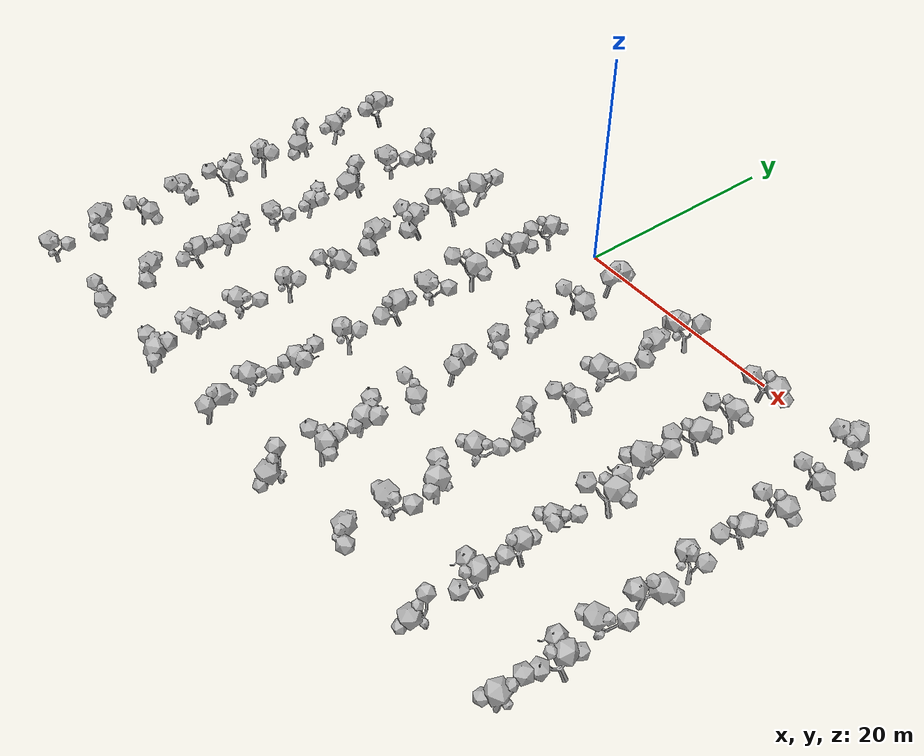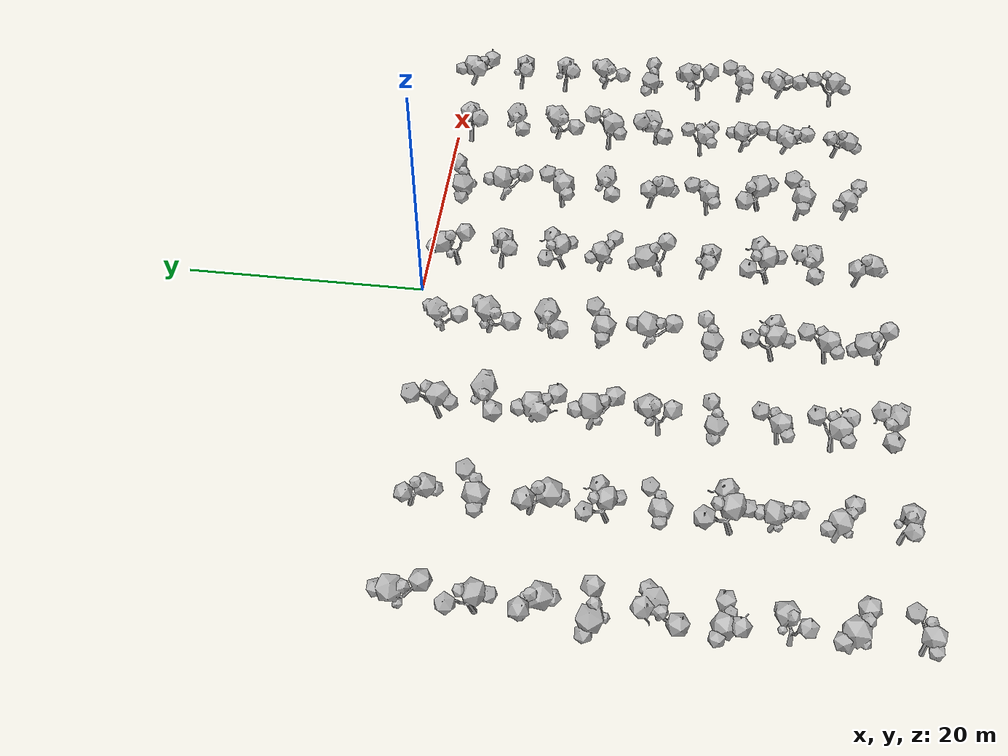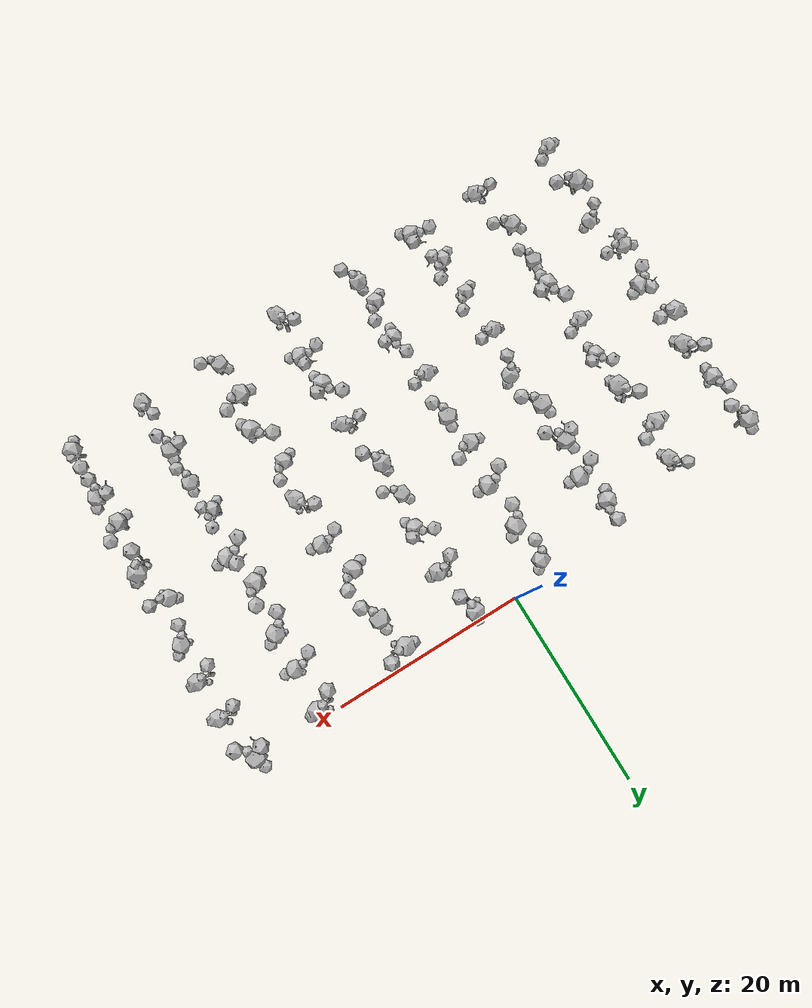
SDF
<sdf version="1.4">
 <world name="procedural_orchard">
  <model name="tree_73">
   <static>true</static>
   <pose>-29.186 -3.36981 0 0 0 5.69963</pose>
   <link name="link">
    <visual name="visual">
     <geometry>
      <mesh><uri>model://orchard/orchard_tree_4.dae</uri><scale>2.61863 2.61863 2.61863</scale></mesh>
     </geometry>
    </visual>
    <collision name="trunk_collision">
     <pose>0 0 1 0 0 0</pose>
     <geometry><cylinder><radius>0.25</radius><length>2</length></cylinder></geometry>
    </collision>
   </link>
  </model>
  <model name="tree_74">
   <static>true</static>
   <pose>-20.8308 -3.02183 0 0 0 3.83931</pose>
   <link name="link">
    <visual name="visual">
     <geometry>
      <mesh><uri>model://orchard/orchard_tree_3.dae</uri><scale>2.30781 2.30781 2.30781</scale></mesh>
     </geometry>
    </visual>
    <collision name="trunk_collision">
     <pose>0 0 1 0 0 0</pose>
     <geometry><cylinder><radius>0.25</radius><length>2</length></cylinder></geometry>
    </collision>
   </link>
  </model>
  <model name="tree_75">
   <static>true</static>
   <pose>-12.4755 -2.67385 0 0 0 3.73457</pose>
   <link name="link">
    <visual name="visual">
     <geometry>
      <mesh><uri>model://orchard/orchard_tree_1.dae</uri><scale>2.63728 2.63728 2.63728</scale></mesh>
     </geometry>
    </visual>
    <collision name="trunk_collision">
     <pose>0 0 1 0 0 0</pose>
     <geometry><cylinder><radius>0.25</radius><length>2</length></cylinder></geometry>
    </collision>
   </link>
  </model>
  <model name="tree_76">
   <static>true</static>
   <pose>-4.12022 -2.32587 0 0 0 5.08018</pose>
   <link name="link">
    <visual name="visual">
     <geometry>
      <mesh><uri>model://orchard/orchard_tree_4.dae</uri><scale>2.4354 2.4354 2.4354</scale></mesh>
     </geometry>
    </visual>
    <collision name="trunk_collision">
     <pose>0 0 1 0 0 0</pose>
     <geometry><cylinder><radius>0.25</radius><length>2</length></cylinder></geometry>
    </collision>
   </link>
  </model>
  <model name="tree_77">
   <static>true</static>
   <pose>4.23505 -1.97789 0 0 0 0.270911</pose>
   <link name="link">
    <visual name="visual">
     <geometry>
      <mesh><uri>model://orchard/orchard_tree_3.dae</uri><scale>2.61582 2.61582 2.61582</scale></mesh>
     </geometry>
    </visual>
    <collision name="trunk_collision">
     <pose>0 0 1 0 0 0</pose>
     <geometry><cylinder><radius>0.25</radius><length>2</length></cylinder></geometry>
    </collision>
   </link>
  </model>
  <model name="tree_78">
   <static>true</static>
   <pose>12.5903 -1.62991 0 0 0 1.86955</pose>
   <link name="link">
    <visual name="visual">
     <geometry>
      <mesh><uri>model://orchard/orchard_tree_3.dae</uri><scale>2.68118 2.68118 2.68118</scale></mesh>
     </geometry>
    </visual>
    <collision name="trunk_collision">
     <pose>0 0 1 0 0 0</pose>
     <geometry><cylinder><radius>0.25</radius><length>2</length></cylinder></geometry>
    </collision>
   </link>
  </model>
  <model name="tree_79">
   <static>true</static>
   <pose>20.9456 -1.28193 0 0 0 5.24981</pose>
   <link name="link">
    <visual name="visual">
     <geometry>
      <mesh><uri>model://orchard/orchard_tree_3.dae</uri><scale>2.68054 2.68054 2.68054</scale></mesh>
     </geometry>
    </visual>
    <collision name="trunk_collision">
     <pose>0 0 1 0 0 0</pose>
     <geometry><cylinder><radius>0.25</radius><length>2</length></cylinder></geometry>
    </collision>
   </link>
  </model>
  <model name="tree_80">
   <static>true</static>
   <pose>29.3009 -0.933953 0 0 0 0.298929</pose>
   <link name="link">
    <visual name="visual">
     <geometry>
      <mesh><uri>model://orchard/orchard_tree_5.dae</uri><scale>2.7302 2.7302 2.7302</scale></mesh>
     </geometry>
    </visual>
    <collision name="trunk_collision">
     <pose>0 0 1 0 0 0</pose>
     <geometry><cylinder><radius>0.25</radius><length>2</length></cylinder></geometry>
    </collision>
   </link>
  </model>
  <model name="tree_81">
   <static>true</static>
   <pose>-29.0568 -7.73036 0 0 0 4.25338</pose>
   <link name="link">
    <visual name="visual">
     <geometry>
      <mesh><uri>model://orchard/orchard_tree_1.dae</uri><scale>2.47184 2.47184 2.47184</scale></mesh>
     </geometry>
    </visual>
    <collision name="trunk_collision">
     <pose>0 0 1 0 0 0</pose>
     <geometry><cylinder><radius>0.25</radius><length>2</length></cylinder></geometry>
    </collision>
   </link>
  </model>
  <model name="tree_82">
   <static>true</static>
   <pose>-20.7057 -7.36617 0 0 0 1.13083</pose>
   <link name="link">
    <visual name="visual">
     <geometry>
      <mesh><uri>model://orchard/orchard_tree_4.dae</uri><scale>2.57348 2.57348 2.57348</scale></mesh>
     </geometry>
    </visual>
    <collision name="trunk_collision">
     <pose>0 0 1 0 0 0</pose>
     <geometry><cylinder><radius>0.25</radius><length>2</length></cylinder></geometry>
    </collision>
   </link>
  </model>
  <model name="tree_83">
   <static>true</static>
   <pose>-12.3545 -7.00198 0 0 0 5.7632</pose>
   <link name="link">
    <visual name="visual">
     <geometry>
      <mesh><uri>model://orchard/orchard_tree_1.dae</uri><scale>2.6999 2.6999 2.6999</scale></mesh>
     </geometry>
    </visual>
    <collision name="trunk_collision">
     <pose>0 0 1 0 0 0</pose>
     <geometry><cylinder><radius>0.25</radius><length>2</length></cylinder></geometry>
    </collision>
   </link>
  </model>
  <model name="tree_84">
   <static>true</static>
   <pose>-4.00334 -6.63778 0 0 0 0.206527</pose>
   <link name="link">
    <visual name="visual">
     <geometry>
      <mesh><uri>model://orchard/orchard_tree_1.dae</uri><scale>2.69623 2.69623 2.69623</scale></mesh>
     </geometry>
    </visual>
    <collision name="trunk_collision">
     <pose>0 0 1 0 0 0</pose>
     <geometry><cylinder><radius>0.25</radius><length>2</length></cylinder></geometry>
    </collision>
   </link>
  </model>
  <model name="tree_85">
   <static>true</static>
   <pose>4.34782 -6.27359 0 0 0 5.07325</pose>
   <link name="link">
    <visual name="visual">
     <geometry>
      <mesh><uri>model://orchard/orchard_tree_3.dae</uri><scale>2.51802 2.51802 2.51802</scale></mesh>
     </geometry>
    </visual>
    <collision name="trunk_collision">
     <pose>0 0 1 0 0 0</pose>
     <geometry><cylinder><radius>0.25</radius><length>2</length></cylinder></geometry>
    </collision>
   </link>
  </model>
  <model name="tree_86">
   <static>true</static>
   <pose>12.699 -5.9094 0 0 0 1.1199</pose>
   <link name="link">
    <visual name="visual">
     <geometry>
      <mesh><uri>model://orchard/orchard_tree_1.dae</uri><scale>2.65217 2.65217 2.65217</scale></mesh>
     </geometry>
    </visual>
    <collision name="trunk_collision">
     <pose>0 0 1 0 0 0</pose>
     <geometry><cylinder><radius>0.25</radius><length>2</length></cylinder></geometry>
    </collision>
   </link>
  </model>
  <model name="tree_87">
   <static>true</static>
   <pose>21.0501 -5.5452 0 0 0 5.71698</pose>
   <link name="link">
    <visual name="visual">
     <geometry>
      <mesh><uri>model://orchard/orchard_tree_1.dae</uri><scale>2.46367 2.46367 2.46367</scale></mesh>
     </geometry>
    </visual>
    <collision name="trunk_collision">
     <pose>0 0 1 0 0 0</pose>
     <geometry><cylinder><radius>0.25</radius><length>2</length></cylinder></geometry>
    </collision>
   </link>
  </model>
  <model name="tree_88">
   <static>true</static>
   <pose>29.4013 -5.18101 0 0 0 4.85213</pose>
   <link name="link">
    <visual name="visual">
     <geometry>
      <mesh><uri>model://orchard/orchard_tree_3.dae</uri><scale>2.39782 2.39782 2.39782</scale></mesh>
     </geometry>
    </visual>
    <collision name="trunk_collision">
     <pose>0 0 1 0 0 0</pose>
     <geometry><cylinder><radius>0.25</radius><length>2</length></cylinder></geometry>
    </collision>
   </link>
  </model>
  <model name="tree_89">
   <static>true</static>
   <pose>-28.9276 -12.0909 0 0 0 3.97932</pose>
   <link name="link">
    <visual name="visual">
     <geometry>
      <mesh><uri>model://orchard/orchard_tree_3.dae</uri><scale>2.58198 2.58198 2.58198</scale></mesh>
     </geometry>
    </visual>
    <collision name="trunk_collision">
     <pose>0 0 1 0 0 0</pose>
     <geometry><cylinder><radius>0.25</radius><length>2</length></cylinder></geometry>
    </collision>
   </link>
  </model>
  <model name="tree_90">
   <static>true</static>
   <pose>-20.5806 -11.7105 0 0 0 3.73047</pose>
   <link name="link">
    <visual name="visual">
     <geometry>
      <mesh><uri>model://orchard/orchard_tree_3.dae</uri><scale>2.73217 2.73217 2.73217</scale></mesh>
     </geometry>
    </visual>
    <collision name="trunk_collision">
     <pose>0 0 1 0 0 0</pose>
     <geometry><cylinder><radius>0.25</radius><length>2</length></cylinder></geometry>
    </collision>
   </link>
  </model>
  <model name="tree_91">
   <static>true</static>
   <pose>-12.2335 -11.3301 0 0 0 0.234946</pose>
   <link name="link">
    <visual name="visual">
     <geometry>
      <mesh><uri>model://orchard/orchard_tree_5.dae</uri><scale>2.66859 2.66859 2.66859</scale></mesh>
     </geometry>
    </visual>
    <collision name="trunk_collision">
     <pose>0 0 1 0 0 0</pose>
     <geometry><cylinder><radius>0.25</radius><length>2</length></cylinder></geometry>
    </collision>
   </link>
  </model>
  <model name="tree_92">
   <static>true</static>
   <pose>-3.88645 -10.9497 0 0 0 4.29987</pose>
   <link name="link">
    <visual name="visual">
     <geometry>
      <mesh><uri>model://orchard/orchard_tree_4.dae</uri><scale>2.69871 2.69871 2.69871</scale></mesh>
     </geometry>
    </visual>
    <collision name="trunk_collision">
     <pose>0 0 1 0 0 0</pose>
     <geometry><cylinder><radius>0.25</radius><length>2</length></cylinder></geometry>
    </collision>
   </link>
  </model>
  <model name="tree_93">
   <static>true</static>
   <pose>4.4606 -10.5693 0 0 0 3.67034</pose>
   <link name="link">
    <visual name="visual">
     <geometry>
      <mesh><uri>model://orchard/orchard_tree_5.dae</uri><scale>2.43924 2.43924 2.43924</scale></mesh>
     </geometry>
    </visual>
    <collision name="trunk_collision">
     <pose>0 0 1 0 0 0</pose>
     <geometry><cylinder><radius>0.25</radius><length>2</length></cylinder></geometry>
    </collision>
   </link>
  </model>
  <model name="tree_94">
   <static>true</static>
   <pose>12.8076 -10.1889 0 0 0 2.99465</pose>
   <link name="link">
    <visual name="visual">
     <geometry>
      <mesh><uri>model://orchard/orchard_tree_1.dae</uri><scale>2.63333 2.63333 2.63333</scale></mesh>
     </geometry>
    </visual>
    <collision name="trunk_collision">
     <pose>0 0 1 0 0 0</pose>
     <geometry><cylinder><radius>0.25</radius><length>2</length></cylinder></geometry>
    </collision>
   </link>
  </model>
  <model name="tree_95">
   <static>true</static>
   <pose>21.1547 -9.80847 0 0 0 0.079512</pose>
   <link name="link">
    <visual name="visual">
     <geometry>
      <mesh><uri>model://orchard/orchard_tree_1.dae</uri><scale>2.63294 2.63294 2.63294</scale></mesh>
     </geometry>
    </visual>
    <collision name="trunk_collision">
     <pose>0 0 1 0 0 0</pose>
     <geometry><cylinder><radius>0.25</radius><length>2</length></cylinder></geometry>
    </collision>
   </link>
  </model>
  <model name="tree_96">
   <static>true</static>
   <pose>29.5018 -9.42807 0 0 0 5.13336</pose>
   <link name="link">
    <visual name="visual">
     <geometry>
      <mesh><uri>model://orchard/orchard_tree_3.dae</uri><scale>2.42974 2.42974 2.42974</scale></mesh>
     </geometry>
    </visual>
    <collision name="trunk_collision">
     <pose>0 0 1 0 0 0</pose>
     <geometry><cylinder><radius>0.25</radius><length>2</length></cylinder></geometry>
    </collision>
   </link>
  </model>
  <model name="tree_97">
   <static>true</static>
   <pose>-28.7984 -16.4515 0 0 0 1.53522</pose>
   <link name="link">
    <visual name="visual">
     <geometry>
      <mesh><uri>model://orchard/orchard_tree_3.dae</uri><scale>2.63081 2.63081 2.63081</scale></mesh>
     </geometry>
    </visual>
    <collision name="trunk_collision">
     <pose>0 0 1 0 0 0</pose>
     <geometry><cylinder><radius>0.25</radius><length>2</length></cylinder></geometry>
    </collision>
   </link>
  </model>
  <model name="tree_98">
   <static>true</static>
   <pose>-20.4555 -16.0549 0 0 0 3.39275</pose>
   <link name="link">
    <visual name="visual">
     <geometry>
      <mesh><uri>model://orchard/orchard_tree_5.dae</uri><scale>2.35344 2.35344 2.35344</scale></mesh>
     </geometry>
    </visual>
    <collision name="trunk_collision">
     <pose>0 0 1 0 0 0</pose>
     <geometry><cylinder><radius>0.25</radius><length>2</length></cylinder></geometry>
    </collision>
   </link>
  </model>
  <model name="tree_99">
   <static>true</static>
   <pose>-12.1125 -15.6582 0 0 0 1.28134</pose>
   <link name="link">
    <visual name="visual">
     <geometry>
      <mesh><uri>model://orchard/orchard_tree_1.dae</uri><scale>2.72484 2.72484 2.72484</scale></mesh>
     </geometry>
    </visual>
    <collision name="trunk_collision">
     <pose>0 0 1 0 0 0</pose>
     <geometry><cylinder><radius>0.25</radius><length>2</length></cylinder></geometry>
    </collision>
   </link>
  </model>
  <model name="tree_100">
   <static>true</static>
   <pose>-3.76957 -15.2616 0 0 0 1.05734</pose>
   <link name="link">
    <visual name="visual">
     <geometry>
      <mesh><uri>model://orchard/orchard_tree_4.dae</uri><scale>2.514 2.514 2.514</scale></mesh>
     </geometry>
    </visual>
    <collision name="trunk_collision">
     <pose>0 0 1 0 0 0</pose>
     <geometry><cylinder><radius>0.25</radius><length>2</length></cylinder></geometry>
    </collision>
   </link>
  </model>
  <model name="tree_101">
   <static>true</static>
   <pose>4.57337 -14.865 0 0 0 0.0342495</pose>
   <link name="link">
    <visual name="visual">
     <geometry>
      <mesh><uri>model://orchard/orchard_tree_4.dae</uri><scale>2.32696 2.32696 2.32696</scale></mesh>
     </geometry>
    </visual>
    <collision name="trunk_collision">
     <pose>0 0 1 0 0 0</pose>
     <geometry><cylinder><radius>0.25</radius><length>2</length></cylinder></geometry>
    </collision>
   </link>
  </model>
  <model name="tree_102">
   <static>true</static>
   <pose>12.9163 -14.4684 0 0 0 5.67294</pose>
   <link name="link">
    <visual name="visual">
     <geometry>
      <mesh><uri>model://orchard/orchard_tree_1.dae</uri><scale>2.47838 2.47838 2.47838</scale></mesh>
     </geometry>
    </visual>
    <collision name="trunk_collision">
     <pose>0 0 1 0 0 0</pose>
     <geometry><cylinder><radius>0.25</radius><length>2</length></cylinder></geometry>
    </collision>
   </link>
  </model>
  <model name="tree_103">
   <static>true</static>
   <pose>21.2593 -14.0717 0 0 0 1.76782</pose>
   <link name="link">
    <visual name="visual">
     <geometry>
      <mesh><uri>model://orchard/orchard_tree_4.dae</uri><scale>2.7198 2.7198 2.7198</scale></mesh>
     </geometry>
    </visual>
    <collision name="trunk_collision">
     <pose>0 0 1 0 0 0</pose>
     <geometry><cylinder><radius>0.25</radius><length>2</length></cylinder></geometry>
    </collision>
   </link>
  </model>
  <model name="tree_104">
   <static>true</static>
   <pose>29.6022 -13.6751 0 0 0 0.30171</pose>
   <link name="link">
    <visual name="visual">
     <geometry>
      <mesh><uri>model://orchard/orchard_tree_1.dae</uri><scale>2.41984 2.41984 2.41984</scale></mesh>
     </geometry>
    </visual>
    <collision name="trunk_collision">
     <pose>0 0 1 0 0 0</pose>
     <geometry><cylinder><radius>0.25</radius><length>2</length></cylinder></geometry>
    </collision>
   </link>
  </model>
  <model name="tree_105">
   <static>true</static>
   <pose>-28.6692 -20.812 0 0 0 5.11391</pose>
   <link name="link">
    <visual name="visual">
     <geometry>
      <mesh><uri>model://orchard/orchard_tree_5.dae</uri><scale>2.63631 2.63631 2.63631</scale></mesh>
     </geometry>
    </visual>
    <collision name="trunk_collision">
     <pose>0 0 1 0 0 0</pose>
     <geometry><cylinder><radius>0.25</radius><length>2</length></cylinder></geometry>
    </collision>
   </link>
  </model>
  <model name="tree_106">
   <static>true</static>
   <pose>-20.3303 -20.3992 0 0 0 1.08943</pose>
   <link name="link">
    <visual name="visual">
     <geometry>
      <mesh><uri>model://orchard/orchard_tree_4.dae</uri><scale>2.2565 2.2565 2.2565</scale></mesh>
     </geometry>
    </visual>
    <collision name="trunk_collision">
     <pose>0 0 1 0 0 0</pose>
     <geometry><cylinder><radius>0.25</radius><length>2</length></cylinder></geometry>
    </collision>
   </link>
  </model>
  <model name="tree_107">
   <static>true</static>
   <pose>-11.9915 -19.9864 0 0 0 5.87483</pose>
   <link name="link">
    <visual name="visual">
     <geometry>
      <mesh><uri>model://orchard/orchard_tree_3.dae</uri><scale>2.4658 2.4658 2.4658</scale></mesh>
     </geometry>
    </visual>
    <collision name="trunk_collision">
     <pose>0 0 1 0 0 0</pose>
     <geometry><cylinder><radius>0.25</radius><length>2</length></cylinder></geometry>
    </collision>
   </link>
  </model>
  <model name="tree_108">
   <static>true</static>
   <pose>-3.65268 -19.5735 0 0 0 0.891466</pose>
   <link name="link">
    <visual name="visual">
     <geometry>
      <mesh><uri>model://orchard/orchard_tree_1.dae</uri><scale>2.63006 2.63006 2.63006</scale></mesh>
     </geometry>
    </visual>
    <collision name="trunk_collision">
     <pose>0 0 1 0 0 0</pose>
     <geometry><cylinder><radius>0.25</radius><length>2</length></cylinder></geometry>
    </collision>
   </link>
  </model>
  <model name="tree_109">
   <static>true</static>
   <pose>4.68615 -19.1607 0 0 0 0.575252</pose>
   <link name="link">
    <visual name="visual">
     <geometry>
      <mesh><uri>model://orchard/orchard_tree_3.dae</uri><scale>2.68043 2.68043 2.68043</scale></mesh>
     </geometry>
    </visual>
    <collision name="trunk_collision">
     <pose>0 0 1 0 0 0</pose>
     <geometry><cylinder><radius>0.25</radius><length>2</length></cylinder></geometry>
    </collision>
   </link>
  </model>
  <model name="tree_110">
   <static>true</static>
   <pose>13.025 -18.7479 0 0 0 3.89281</pose>
   <link name="link">
    <visual name="visual">
     <geometry>
      <mesh><uri>model://orchard/orchard_tree_3.dae</uri><scale>2.54746 2.54746 2.54746</scale></mesh>
     </geometry>
    </visual>
    <collision name="trunk_collision">
     <pose>0 0 1 0 0 0</pose>
     <geometry><cylinder><radius>0.25</radius><length>2</length></cylinder></geometry>
    </collision>
   </link>
  </model>
  <model name="tree_111">
   <static>true</static>
   <pose>21.3638 -18.335 0 0 0 4.85988</pose>
   <link name="link">
    <visual name="visual">
     <geometry>
      <mesh><uri>model://orchard/orchard_tree_5.dae</uri><scale>2.71136 2.71136 2.71136</scale></mesh>
     </geometry>
    </visual>
    <collision name="trunk_collision">
     <pose>0 0 1 0 0 0</pose>
     <geometry><cylinder><radius>0.25</radius><length>2</length></cylinder></geometry>
    </collision>
   </link>
  </model>
  <model name="tree_112">
   <static>true</static>
   <pose>29.7026 -17.9222 0 0 0 1.44665</pose>
   <link name="link">
    <visual name="visual">
     <geometry>
      <mesh><uri>model://orchard/orchard_tree_3.dae</uri><scale>2.39395 2.39395 2.39395</scale></mesh>
     </geometry>
    </visual>
    <collision name="trunk_collision">
     <pose>0 0 1 0 0 0</pose>
     <geometry><cylinder><radius>0.25</radius><length>2</length></cylinder></geometry>
    </collision>
   </link>
  </model>
  <model name="tree_113">
   <static>true</static>
   <pose>-28.54 -25.1726 0 0 0 1.06714</pose>
   <link name="link">
    <visual name="visual">
     <geometry>
      <mesh><uri>model://orchard/orchard_tree_5.dae</uri><scale>2.41872 2.41872 2.41872</scale></mesh>
     </geometry>
    </visual>
    <collision name="trunk_collision">
     <pose>0 0 1 0 0 0</pose>
     <geometry><cylinder><radius>0.25</radius><length>2</length></cylinder></geometry>
    </collision>
   </link>
  </model>
  <model name="tree_114">
   <static>true</static>
   <pose>-20.2052 -24.7435 0 0 0 3.20138</pose>
   <link name="link">
    <visual name="visual">
     <geometry>
      <mesh><uri>model://orchard/orchard_tree_5.dae</uri><scale>2.73556 2.73556 2.73556</scale></mesh>
     </geometry>
    </visual>
    <collision name="trunk_collision">
     <pose>0 0 1 0 0 0</pose>
     <geometry><cylinder><radius>0.25</radius><length>2</length></cylinder></geometry>
    </collision>
   </link>
  </model>
  <model name="tree_115">
   <static>true</static>
   <pose>-11.8705 -24.3145 0 0 0 1.77269</pose>
   <link name="link">
    <visual name="visual">
     <geometry>
      <mesh><uri>model://orchard/orchard_tree_3.dae</uri><scale>2.29071 2.29071 2.29071</scale></mesh>
     </geometry>
    </visual>
    <collision name="trunk_collision">
     <pose>0 0 1 0 0 0</pose>
     <geometry><cylinder><radius>0.25</radius><length>2</length></cylinder></geometry>
    </collision>
   </link>
  </model>
  <model name="tree_116">
   <static>true</static>
   <pose>-3.5358 -23.8854 0 0 0 1.85434</pose>
   <link name="link">
    <visual name="visual">
     <geometry>
      <mesh><uri>model://orchard/orchard_tree_3.dae</uri><scale>2.35218 2.35218 2.35218</scale></mesh>
     </geometry>
    </visual>
    <collision name="trunk_collision">
     <pose>0 0 1 0 0 0</pose>
     <geometry><cylinder><radius>0.25</radius><length>2</length></cylinder></geometry>
    </collision>
   </link>
  </model>
  <model name="tree_117">
   <static>true</static>
   <pose>4.79892 -23.4564 0 0 0 4.56622</pose>
   <link name="link">
    <visual name="visual">
     <geometry>
      <mesh><uri>model://orchard/orchard_tree_3.dae</uri><scale>2.32216 2.32216 2.32216</scale></mesh>
     </geometry>
    </visual>
    <collision name="trunk_collision">
     <pose>0 0 1 0 0 0</pose>
     <geometry><cylinder><radius>0.25</radius><length>2</length></cylinder></geometry>
    </collision>
   </link>
  </model>
  <model name="tree_118">
   <static>true</static>
   <pose>13.1336 -23.0273 0 0 0 3.05895</pose>
   <link name="link">
    <visual name="visual">
     <geometry>
      <mesh><uri>model://orchard/orchard_tree_1.dae</uri><scale>2.4143 2.4143 2.4143</scale></mesh>
     </geometry>
    </visual>
    <collision name="trunk_collision">
     <pose>0 0 1 0 0 0</pose>
     <geometry><cylinder><radius>0.25</radius><length>2</length></cylinder></geometry>
    </collision>
   </link>
  </model>
  <model name="tree_119">
   <static>true</static>
   <pose>21.4684 -22.5983 0 0 0 2.18466</pose>
   <link name="link">
    <visual name="visual">
     <geometry>
      <mesh><uri>model://orchard/orchard_tree_5.dae</uri><scale>2.27644 2.27644 2.27644</scale></mesh>
     </geometry>
    </visual>
    <collision name="trunk_collision">
     <pose>0 0 1 0 0 0</pose>
     <geometry><cylinder><radius>0.25</radius><length>2</length></cylinder></geometry>
    </collision>
   </link>
  </model>
  <model name="tree_120">
   <static>true</static>
   <pose>29.8031 -22.1692 0 0 0 5.92266</pose>
   <link name="link">
    <visual name="visual">
     <geometry>
      <mesh><uri>model://orchard/orchard_tree_3.dae</uri><scale>2.74053 2.74053 2.74053</scale></mesh>
     </geometry>
    </visual>
    <collision name="trunk_collision">
     <pose>0 0 1 0 0 0</pose>
     <geometry><cylinder><radius>0.25</radius><length>2</length></cylinder></geometry>
    </collision>
   </link>
  </model>
  <model name="tree_121">
   <static>true</static>
   <pose>-28.4107 -29.5331 0 0 0 5.43707</pose>
   <link name="link">
    <visual name="visual">
     <geometry>
      <mesh><uri>model://orchard/orchard_tree_3.dae</uri><scale>2.28877 2.28877 2.28877</scale></mesh>
     </geometry>
    </visual>
    <collision name="trunk_collision">
     <pose>0 0 1 0 0 0</pose>
     <geometry><cylinder><radius>0.25</radius><length>2</length></cylinder></geometry>
    </collision>
   </link>
  </model>
  <model name="tree_122">
   <static>true</static>
   <pose>-20.0801 -29.0879 0 0 0 0.962823</pose>
   <link name="link">
    <visual name="visual">
     <geometry>
      <mesh><uri>model://orchard/orchard_tree_1.dae</uri><scale>2.33973 2.33973 2.33973</scale></mesh>
     </geometry>
    </visual>
    <collision name="trunk_collision">
     <pose>0 0 1 0 0 0</pose>
     <geometry><cylinder><radius>0.25</radius><length>2</length></cylinder></geometry>
    </collision>
   </link>
  </model>
  <model name="tree_123">
   <static>true</static>
   <pose>-11.7495 -28.6426 0 0 0 3.08297</pose>
   <link name="link">
    <visual name="visual">
     <geometry>
      <mesh><uri>model://orchard/orchard_tree_1.dae</uri><scale>2.34213 2.34213 2.34213</scale></mesh>
     </geometry>
    </visual>
    <collision name="trunk_collision">
     <pose>0 0 1 0 0 0</pose>
     <geometry><cylinder><radius>0.25</radius><length>2</length></cylinder></geometry>
    </collision>
   </link>
  </model>
  <model name="tree_124">
   <static>true</static>
   <pose>-3.41892 -28.1973 0 0 0 2.90149</pose>
   <link name="link">
    <visual name="visual">
     <geometry>
      <mesh><uri>model://orchard/orchard_tree_5.dae</uri><scale>2.48521 2.48521 2.48521</scale></mesh>
     </geometry>
    </visual>
    <collision name="trunk_collision">
     <pose>0 0 1 0 0 0</pose>
     <geometry><cylinder><radius>0.25</radius><length>2</length></cylinder></geometry>
    </collision>
   </link>
  </model>
  <model name="tree_125">
   <static>true</static>
   <pose>4.91169 -27.7521 0 0 0 3.41303</pose>
   <link name="link">
    <visual name="visual">
     <geometry>
      <mesh><uri>model://orchard/orchard_tree_5.dae</uri><scale>2.6523 2.6523 2.6523</scale></mesh>
     </geometry>
    </visual>
    <collision name="trunk_collision">
     <pose>0 0 1 0 0 0</pose>
     <geometry><cylinder><radius>0.25</radius><length>2</length></cylinder></geometry>
    </collision>
   </link>
  </model>
  <model name="tree_126">
   <static>true</static>
   <pose>13.2423 -27.3068 0 0 0 4.69711</pose>
   <link name="link">
    <visual name="visual">
     <geometry>
      <mesh><uri>model://orchard/orchard_tree_1.dae</uri><scale>2.72634 2.72634 2.72634</scale></mesh>
     </geometry>
    </visual>
    <collision name="trunk_collision">
     <pose>0 0 1 0 0 0</pose>
     <geometry><cylinder><radius>0.25</radius><length>2</length></cylinder></geometry>
    </collision>
   </link>
  </model>
  <model name="tree_127">
   <static>true</static>
   <pose>21.5729 -26.8616 0 0 0 5.6039</pose>
   <link name="link">
    <visual name="visual">
     <geometry>
      <mesh><uri>model://orchard/orchard_tree_4.dae</uri><scale>2.38708 2.38708 2.38708</scale></mesh>
     </geometry>
    </visual>
    <collision name="trunk_collision">
     <pose>0 0 1 0 0 0</pose>
     <geometry><cylinder><radius>0.25</radius><length>2</length></cylinder></geometry>
    </collision>
   </link>
  </model>
  <model name="tree_128">
   <static>true</static>
   <pose>29.9035 -26.4163 0 0 0 1.38542</pose>
   <link name="link">
    <visual name="visual">
     <geometry>
      <mesh><uri>model://orchard/orchard_tree_4.dae</uri><scale>2.51532 2.51532 2.51532</scale></mesh>
     </geometry>
    </visual>
    <collision name="trunk_collision">
     <pose>0 0 1 0 0 0</pose>
     <geometry><cylinder><radius>0.25</radius><length>2</length></cylinder></geometry>
    </collision>
   </link>
  </model>
  <model name="tree_129">
   <static>true</static>
   <pose>-28.2815 -33.8937 0 0 0 1.71763</pose>
   <link name="link">
    <visual name="visual">
     <geometry>
      <mesh><uri>model://orchard/orchard_tree_1.dae</uri><scale>2.7145 2.7145 2.7145</scale></mesh>
     </geometry>
    </visual>
    <collision name="trunk_collision">
     <pose>0 0 1 0 0 0</pose>
     <geometry><cylinder><radius>0.25</radius><length>2</length></cylinder></geometry>
    </collision>
   </link>
  </model>
  <model name="tree_130">
   <static>true</static>
   <pose>-19.955 -33.4322 0 0 0 1.59866</pose>
   <link name="link">
    <visual name="visual">
     <geometry>
      <mesh><uri>model://orchard/orchard_tree_1.dae</uri><scale>2.45946 2.45946 2.45946</scale></mesh>
     </geometry>
    </visual>
    <collision name="trunk_collision">
     <pose>0 0 1 0 0 0</pose>
     <geometry><cylinder><radius>0.25</radius><length>2</length></cylinder></geometry>
    </collision>
   </link>
  </model>
  <model name="tree_131">
   <static>true</static>
   <pose>-11.6285 -32.9707 0 0 0 2.08585</pose>
   <link name="link">
    <visual name="visual">
     <geometry>
      <mesh><uri>model://orchard/orchard_tree_5.dae</uri><scale>2.51419 2.51419 2.51419</scale></mesh>
     </geometry>
    </visual>
    <collision name="trunk_collision">
     <pose>0 0 1 0 0 0</pose>
     <geometry><cylinder><radius>0.25</radius><length>2</length></cylinder></geometry>
    </collision>
   </link>
  </model>
  <model name="tree_132">
   <static>true</static>
   <pose>-3.30203 -32.5093 0 0 0 3.21346</pose>
   <link name="link">
    <visual name="visual">
     <geometry>
      <mesh><uri>model://orchard/orchard_tree_1.dae</uri><scale>2.45567 2.45567 2.45567</scale></mesh>
     </geometry>
    </visual>
    <collision name="trunk_collision">
     <pose>0 0 1 0 0 0</pose>
     <geometry><cylinder><radius>0.25</radius><length>2</length></cylinder></geometry>
    </collision>
   </link>
  </model>
  <model name="tree_133">
   <static>true</static>
   <pose>5.02447 -32.0478 0 0 0 4.37125</pose>
   <link name="link">
    <visual name="visual">
     <geometry>
      <mesh><uri>model://orchard/orchard_tree_5.dae</uri><scale>2.51226 2.51226 2.51226</scale></mesh>
     </geometry>
    </visual>
    <collision name="trunk_collision">
     <pose>0 0 1 0 0 0</pose>
     <geometry><cylinder><radius>0.25</radius><length>2</length></cylinder></geometry>
    </collision>
   </link>
  </model>
  <model name="tree_134">
   <static>true</static>
   <pose>13.351 -31.5863 0 0 0 1.04384</pose>
   <link name="link">
    <visual name="visual">
     <geometry>
      <mesh><uri>model://orchard/orchard_tree_4.dae</uri><scale>2.65377 2.65377 2.65377</scale></mesh>
     </geometry>
    </visual>
    <collision name="trunk_collision">
     <pose>0 0 1 0 0 0</pose>
     <geometry><cylinder><radius>0.25</radius><length>2</length></cylinder></geometry>
    </collision>
   </link>
  </model>
  <model name="tree_135">
   <static>true</static>
   <pose>21.6775 -31.1248 0 0 0 6.09933</pose>
   <link name="link">
    <visual name="visual">
     <geometry>
      <mesh><uri>model://orchard/orchard_tree_5.dae</uri><scale>2.55005 2.55005 2.55005</scale></mesh>
     </geometry>
    </visual>
    <collision name="trunk_collision">
     <pose>0 0 1 0 0 0</pose>
     <geometry><cylinder><radius>0.25</radius><length>2</length></cylinder></geometry>
    </collision>
   </link>
  </model>
  <model name="tree_136">
   <static>true</static>
   <pose>30.004 -30.6633 0 0 0 5.80206</pose>
   <link name="link">
    <visual name="visual">
     <geometry>
      <mesh><uri>model://orchard/orchard_tree_5.dae</uri><scale>2.58739 2.58739 2.58739</scale></mesh>
     </geometry>
    </visual>
    <collision name="trunk_collision">
     <pose>0 0 1 0 0 0</pose>
     <geometry><cylinder><radius>0.25</radius><length>2</length></cylinder></geometry>
    </collision>
   </link>
  </model>
  <model name="tree_137">
   <static>true</static>
   <pose>-28.1523 -38.2542 0 0 0 1.24146</pose>
   <link name="link">
    <visual name="visual">
     <geometry>
      <mesh><uri>model://orchard/orchard_tree_4.dae</uri><scale>2.27229 2.27229 2.27229</scale></mesh>
     </geometry>
    </visual>
    <collision name="trunk_collision">
     <pose>0 0 1 0 0 0</pose>
     <geometry><cylinder><radius>0.25</radius><length>2</length></cylinder></geometry>
    </collision>
   </link>
  </model>
  <model name="tree_138">
   <static>true</static>
   <pose>-19.8299 -37.7766 0 0 0 4.57555</pose>
   <link name="link">
    <visual name="visual">
     <geometry>
      <mesh><uri>model://orchard/orchard_tree_3.dae</uri><scale>2.32056 2.32056 2.32056</scale></mesh>
     </geometry>
    </visual>
    <collision name="trunk_collision">
     <pose>0 0 1 0 0 0</pose>
     <geometry><cylinder><radius>0.25</radius><length>2</length></cylinder></geometry>
    </collision>
   </link>
  </model>
  <model name="tree_139">
   <static>true</static>
   <pose>-11.5075 -37.2989 0 0 0 4.12942</pose>
   <link name="link">
    <visual name="visual">
     <geometry>
      <mesh><uri>model://orchard/orchard_tree_5.dae</uri><scale>2.61225 2.61225 2.61225</scale></mesh>
     </geometry>
    </visual>
    <collision name="trunk_collision">
     <pose>0 0 1 0 0 0</pose>
     <geometry><cylinder><radius>0.25</radius><length>2</length></cylinder></geometry>
    </collision>
   </link>
  </model>
  <model name="tree_140">
   <static>true</static>
   <pose>-3.18515 -36.8212 0 0 0 0.478328</pose>
   <link name="link">
    <visual name="visual">
     <geometry>
      <mesh><uri>model://orchard/orchard_tree_3.dae</uri><scale>2.5778 2.5778 2.5778</scale></mesh>
     </geometry>
    </visual>
    <collision name="trunk_collision">
     <pose>0 0 1 0 0 0</pose>
     <geometry><cylinder><radius>0.25</radius><length>2</length></cylinder></geometry>
    </collision>
   </link>
  </model>
  <model name="tree_141">
   <static>true</static>
   <pose>5.13724 -36.3435 0 0 0 3.79826</pose>
   <link name="link">
    <visual name="visual">
     <geometry>
      <mesh><uri>model://orchard/orchard_tree_3.dae</uri><scale>2.51465 2.51465 2.51465</scale></mesh>
     </geometry>
    </visual>
    <collision name="trunk_collision">
     <pose>0 0 1 0 0 0</pose>
     <geometry><cylinder><radius>0.25</radius><length>2</length></cylinder></geometry>
    </collision>
   </link>
  </model>
  <model name="tree_142">
   <static>true</static>
   <pose>13.4596 -35.8658 0 0 0 0.099539</pose>
   <link name="link">
    <visual name="visual">
     <geometry>
      <mesh><uri>model://orchard/orchard_tree_4.dae</uri><scale>2.38417 2.38417 2.38417</scale></mesh>
     </geometry>
    </visual>
    <collision name="trunk_collision">
     <pose>0 0 1 0 0 0</pose>
     <geometry><cylinder><radius>0.25</radius><length>2</length></cylinder></geometry>
    </collision>
   </link>
  </model>
  <model name="tree_143">
   <static>true</static>
   <pose>21.782 -35.3881 0 0 0 3.39519</pose>
   <link name="link">
    <visual name="visual">
     <geometry>
      <mesh><uri>model://orchard/orchard_tree_3.dae</uri><scale>2.33031 2.33031 2.33031</scale></mesh>
     </geometry>
    </visual>
    <collision name="trunk_collision">
     <pose>0 0 1 0 0 0</pose>
     <geometry><cylinder><radius>0.25</radius><length>2</length></cylinder></geometry>
    </collision>
   </link>
  </model>
  <model name="tree_144">
   <static>true</static>
   <pose>30.1044 -34.9104 0 0 0 2.18598</pose>
   <link name="link">
    <visual name="visual">
     <geometry>
      <mesh><uri>model://orchard/orchard_tree_4.dae</uri><scale>2.52179 2.52179 2.52179</scale></mesh>
     </geometry>
    </visual>
    <collision name="trunk_collision">
     <pose>0 0 1 0 0 0</pose>
     <geometry><cylinder><radius>0.25</radius><length>2</length></cylinder></geometry>
    </collision>
   </link>
  </model>
 </world>
</sdf>
